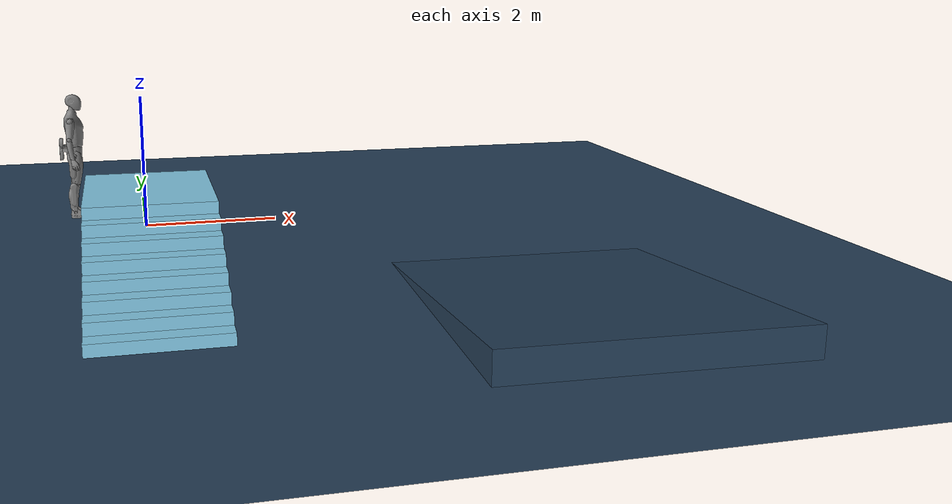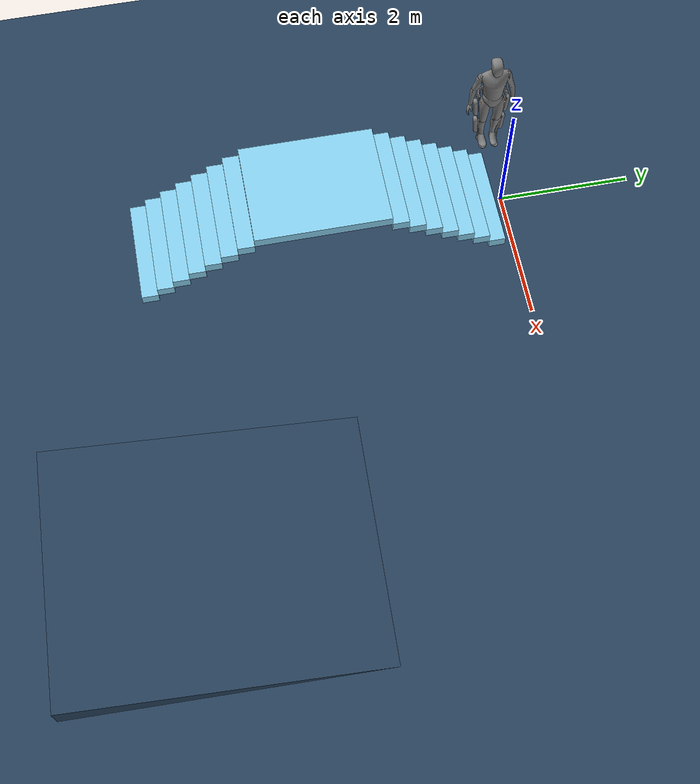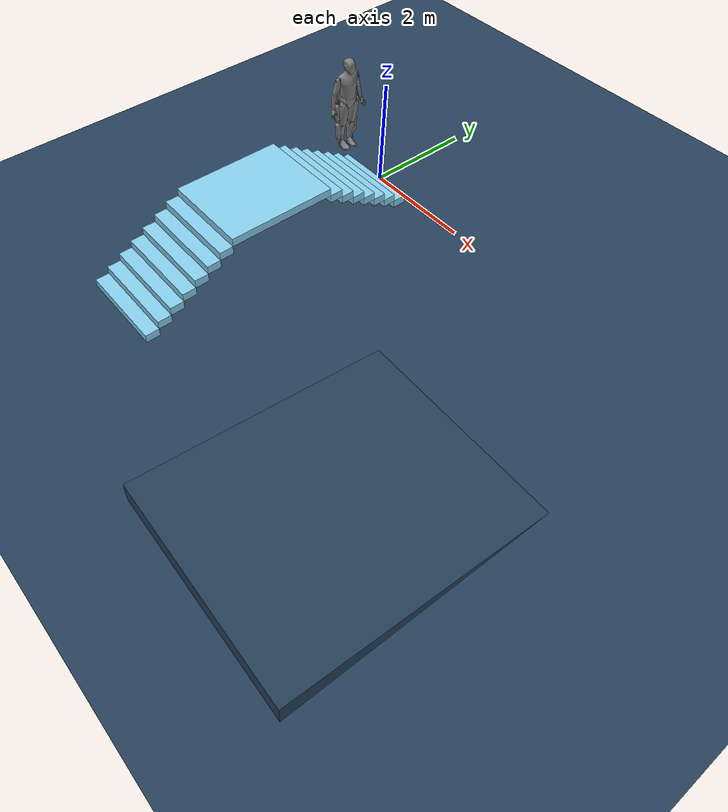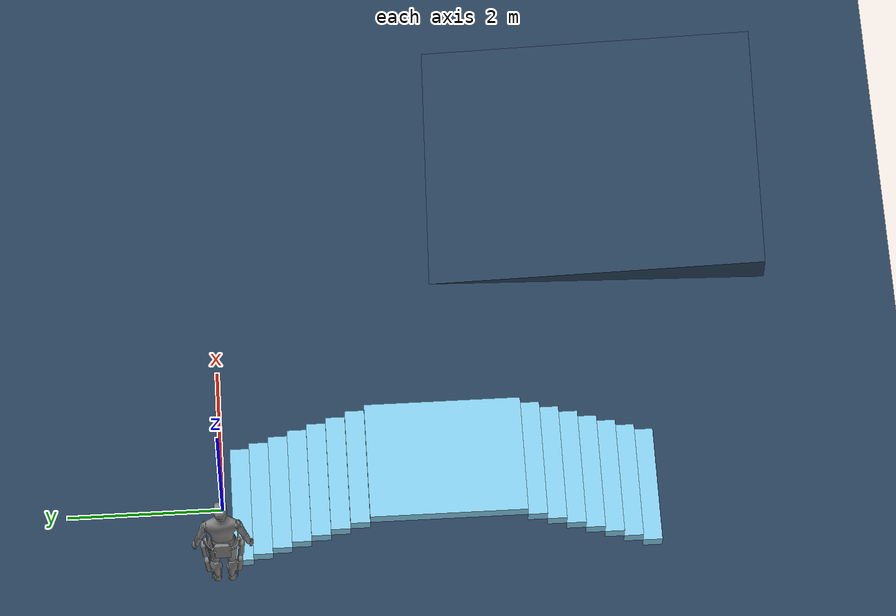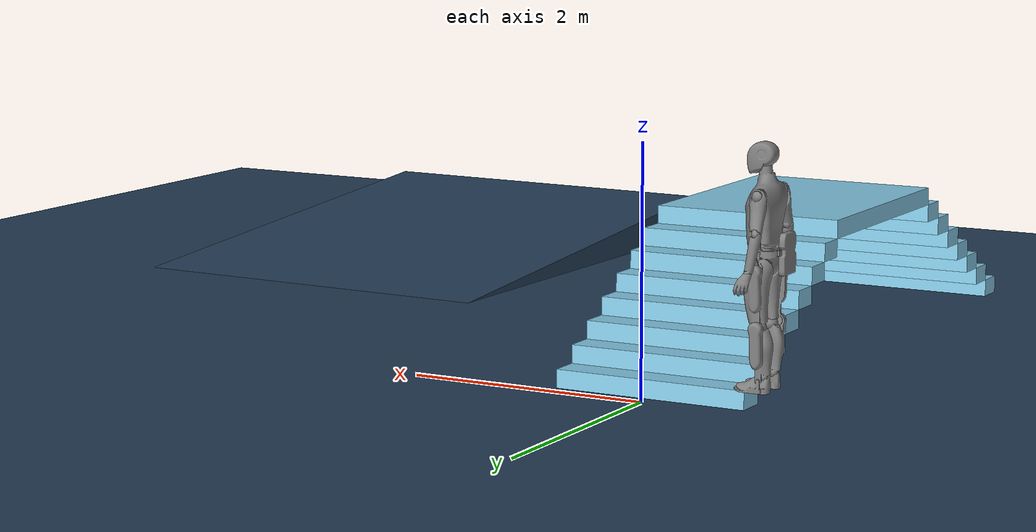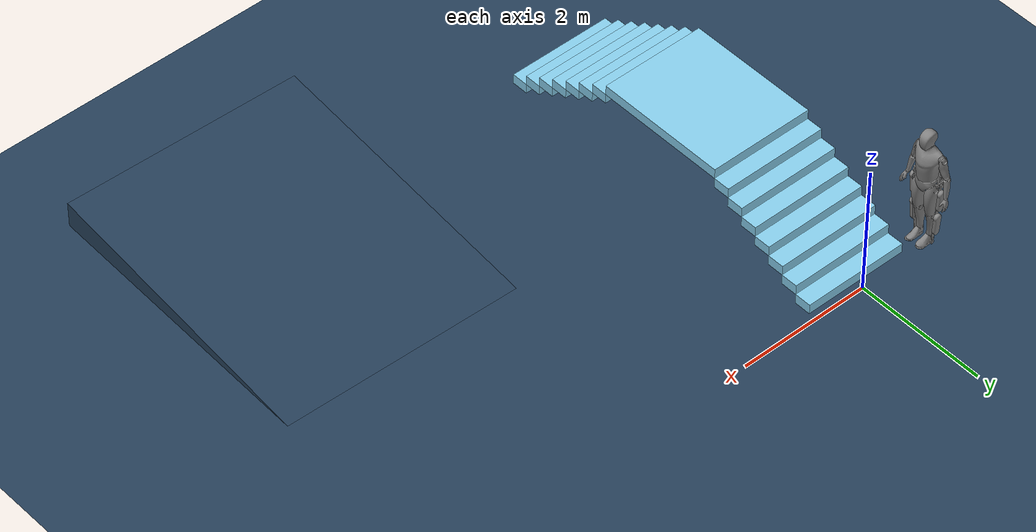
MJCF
<mujoco model="exoskeleton scene">
  <option gravity="0 0 -9.81" />
  <include file="exoskeleton.xml"/>
  <size nconmax="200" njmax="200" nstack="500000"/>
  <statistic center="0 0 1" extent="1.8"/>

  <visual>
    <headlight diffuse="0.6 0.6 0.6" ambient="0.3 0.3 0.3" specular="0 0 0"/>
    <rgba haze="0.15 0.25 0.35 1"/>
    <global azimuth="160" elevation="-20"/>
  </visual>

  <asset>
    <texture type="skybox" builtin="gradient" rgb1="0.3 0.5 0.7" rgb2="0 0 0" width="512" height="3072"/>
    <texture type="2d" name="groundplane" builtin="checker" mark="edge" rgb1="0.2 0.3 0.4" rgb2="0.1 0.2 0.3"
      markrgb="0.8 0.8 0.8" width="300" height="300"/>
    <material name="groundplane" texture="groundplane" texuniform="true" texrepeat="5 5" reflectance="0.2"/>
    <mesh name="slope" file="./meshes/slope.stl" scale="0.002 0.002 0.00124523"/>
  </asset>

  <worldbody>
    <light pos="0 0 3.5" dir="0 0 -1" directional="true"/>
    <!-- 添加 friction 属性来增加地板的摩擦力 -->
    <!-- 第一个地面 -->
    <geom name="floor1" pos="0 0 0" size="10 9 0.05" type="plane" material="groundplane" friction="0.1 0.1 0.1"/>

    <!-- 添加斜坡地形 -->
     <body name="slope_body" pos="5 -3 -0.15" euler="0 0 -1.6">
        <geom name="slope_geom" type="mesh" mesh="slope" material="groundplane" condim="3" friction="0.1 0.1 0.1"/>
    </body>

    <body name="staircase" pos="0 0 0" quat="0.7071 0 0 0">
      <!-- 定义楼梯的每一级台阶 -->
      <body name="step1" pos="0 -0.25 0.075">
          <geom name="step1_geom" type="box" size="0.8 0.125 0.075" rgba="0.529 0.808 0.922 1" contype="1" conaffinity="1"/>
      </body>
      <body name="step2" pos="0 -0.5 0.225">
          <geom name="step2_geom" type="box" size="0.8 0.125 0.075" rgba="0.529 0.808 0.922 1" contype="1" conaffinity="1"/>
      </body>
      <body name="step3" pos="0 -0.75 0.375">
          <geom name="step3_geom" type="box" size="0.8 0.125 0.075" rgba="0.529 0.808 0.922  1" contype="1" conaffinity="1"/>
      </body>
      <body name="step4" pos="0 -1 0.525">
          <geom name="step4_geom" type="box" size="0.8 0.125 0.075" rgba="0.529 0.808 0.922  1" contype="1" conaffinity="1"/>
      </body>
      <body name="step5" pos="0 -1.25 0.675">
          <geom name="step5_geom" type="box" size="0.8 0.125 0.075" rgba="0.529 0.808 0.922  1" contype="1" conaffinity="1"/>
      </body>
      <body name="step6" pos="0 -1.5 0.825">
          <geom name="step6_geom" type="box" size="0.8 0.125 0.075" rgba="0.529 0.808 0.922  1" contype="1" conaffinity="1"/>
      </body>
      <body name="step7" pos="0 -1.75 0.975">
          <geom name="step7_geom" type="box" size="0.8 0.125 0.075" rgba="0.529 0.808 0.922  1" contype="1" conaffinity="1"/>
      </body>
      <body name="step8" pos="0 -2.875 1.125">
          <geom name="step8_geom" type="box" size="0.8 1 0.075" rgba="0.529 0.808 0.922  1" contype="1" conaffinity="1"/>
      </body>
      <body name="step9" pos="0 -4 0.975">
          <geom name="step9_geom" type="box" size="0.8 0.125 0.075" rgba="0.529 0.808 0.922  1" contype="1" conaffinity="1"/>
      </body>
      <body name="step10" pos="0 -4.25 0.825">
          <geom name="step10_geom" type="box" size="0.8 0.125 0.075" rgba="0.529 0.808 0.922  1" contype="1" conaffinity="1"/>
      </body>
      <body name="step11" pos="0 -4.5 0.675">
          <geom name="step11_geom" type="box" size="0.8 0.125 0.075" rgba="0.529 0.808 0.922  1" contype="1" conaffinity="1"/>
      </body>
      <body name="step12" pos="0 -4.75 0.525">
          <geom name="step12_geom" type="box" size="0.8 0.125 0.075" rgba="0.529 0.808 0.922  1" contype="1" conaffinity="1"/>
      </body>
      <body name="step13" pos="0 -5 0.375">
          <geom name="step13_geom" type="box" size="0.8 0.125 0.075" rgba="0.529 0.808 0.922  1" contype="1" conaffinity="1"/>
      </body>
      <body name="step14" pos="0 -5.25 0.225">
          <geom name="step14_geom" type="box" size="0.8 0.125 0.075" rgba="0.529 0.808 0.922  1" contype="1" conaffinity="1"/>
      </body>
      <body name="step15" pos="0 -5.5 0.075">
          <geom name="step15_geom" type="box" size="0.8 0.125 0.075" rgba="0.529 0.808 0.922  1" contype="1" conaffinity="1"/>
      </body>

      左侧扶手 - 调整立杆位置和高度
      <body name="left_handrail" pos="0 0 0">
          <!-- 竖直立杆 - 调整位置和高度 -->

          <!-- 平台的扶手 -->

          <!-- 下行楼梯的扶手 -->

          <!-- 斜向连杆 - 连接各立杆顶部，调整角度 -->

          <!-- 平台扶手连接 -->

          <!-- 下行楼梯扶手连接 -->
      </body>

      <!-- 右侧扶手 - 调整立杆位置和高度 -->
      <body name="right_handrail" pos="0 0 0">
          <!-- 竖直立杆 - 调整位置和高度 -->

          <!-- 平台的扶手 -->

          <!-- 下行楼梯的扶手 -->

          <!-- 斜向连杆 - 连接各立杆顶部，调整角度 -->

          <!-- 平台扶手连接 -->

          <!-- 下行楼梯扶手连接 -->
      </body>
    </body>

  </worldbody>
</mujoco>

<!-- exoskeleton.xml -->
<mujoco model="exoskeleton">
  <compiler angle="radian"/>

  <asset>
    <mesh name="EL_ankle" file="./meshes/EL-ankle.stl" scale="0.001 0.001 0.001"/>
    <mesh name="EL_knee" file="./meshes/EL-knee.stl" scale="0.001 0.001 0.001"/>
    <mesh name="EB" file="./meshes/EB.stl" scale="0.001 0.001 0.001"/>
    <mesh name="EL_hip" file="./meshes/EL-hip.stl" scale="0.001 0.001 0.001"/>
    <mesh name="body" file="./meshes/body.stl" scale="0.001 0.001 0.001"/>
    <mesh name="head" file="./meshes/head.stl" scale="0.001 0.001 0.001"/>
    <mesh name="L_forearm" file="./meshes/L-forearm.stl" scale="0.001 0.001 0.001"/>
    <mesh name="L_arm" file="./meshes/L-arm.stl" scale="0.001 0.001 0.001"/>
    <mesh name="L_hand" file="./meshes/L-hand.stl" scale="0.001 0.001 0.001"/>
    <mesh name="R_arm" file="./meshes/R-arm.stl" scale="0.001 0.001 0.001"/>
    <mesh name="R_hand" file="./meshes/R-hand.stl" scale="0.001 0.001 0.001"/>
    <mesh name="ER_hip" file="./meshes/ER-hip.stl" scale="0.001 0.001 0.001"/>
    <mesh name="ER_knee" file="./meshes/ER-knee.stl" scale="0.001 0.001 0.001"/>
    <mesh name="ER_ankle" file="./meshes/ER-ankle.stl" scale="0.001 0.001 0.001"/>
    <mesh name="R_forearm" file="./meshes/R-forearm.stl" scale="0.001 0.001 0.001"/>
  </asset>

  <worldbody>
  <body name="EB" pos="-1 0 1.3" quat="0.7071 0 0 0.7071">
    <geom name="EB_collision" pos="1.38955e-10 0 -2" quat="1 0 -3.47384e-11 0" type="mesh" mesh="EB"/>
    <body name="EL_hip" pos="0.218902 0.039 -0.168795" quat="0 0.681998 0 -0.731354">
      <inertial pos="0.158888 0.0247193 0.0597323" quat="0.578287 0.401701 0.573377 0.418878" mass="15.9115" diaginertia="0.365197 0.319066 0.0978994"/>
      <joint name="EL_hip_joint" pos="0 0 0" axis="4.69037e-07 0 1" range="-1.5708 1.5708" actuatorfrcrange="-1000000 1000000"/>
      <geom name="EL_hip_collision" pos="1.99513 -1.26085e-12 -0.138013" quat="0 -0.681998 0 0.731354" type="mesh" mesh="EL_hip"/>
      <body name="EL_knee" pos="0.43 0 0.0025" quat="0 -1 0 0">
        <inertial pos="0.154693 0.0059421 -0.0169216" quat="0.401992 0.573192 0.511101 0.498628" mass="8.82676" diaginertia="0.119293 0.105824 0.0291683"/>
        <joint name="EL_knee_joint" pos="0 0 0" axis="-4.69037e-07 0 1" range="-0.174533 2.0944" actuatorfrcrange="-1000000 1000000"/>
        <geom name="EL_knee_collision" pos="1.99513 -2.28873e-12 0.136513" quat="0.681998 0 -0.731354 0" type="mesh" mesh="EL_knee"/>
        <body name="EL_ankle" pos="0.4 0 -0.0025">
          <inertial pos="0.063803 -0.0531817 -0.0573719" quat="0.665675 0.688908 0.241718 -0.15445" mass="1" diaginertia="0.0167909 0.0160893 0.00490528"/>
          <joint name="EL_ankle_joint" pos="0 0 0" axis="-4.69037e-07 0 1" range="-1.0472 1.5708" actuatorfrcrange="-1000000 1000000"/>
          <geom name="EL_ankle_collision" pos="1.99513 -2.29743e-12 0.136513" quat="0.681998 0 -0.731354 0" type="mesh" mesh="EL_ankle"/>
        </body>
      </body>
    </body>
    <body name="ER_hip" pos="-0.218902 0.039 -0.168795" quat="0.681998 0 -0.731354 0">
      <inertial pos="-0.158888 -0.0247193 -0.0597323" quat="0.578287 0.401701 0.573377 0.418878" mass="15.9115" diaginertia="0.365197 0.319066 0.0978994"/>
      <joint name="ER_hip_joint" pos="0 0 0" axis="4.69037e-07 0 1" range="-1.5708 1.5708" actuatorfrcrange="-1000000 1000000"/>
      <geom name="ER_hip_collision" pos="-1.99513 -7.06823e-12 0.138013" quat="0.681998 0 0.731354 0" type="mesh" mesh="ER_hip"/>
      <body name="ER_knee" pos="-0.43 0 -0.0025" quat="0 1 0 0">
        <inertial pos="-0.154693 -0.0059421 0.0169216" quat="0.401992 0.573192 0.511101 0.498628" mass="8.82676" diaginertia="0.119293 0.105824 0.0291683"/>
        <joint name="ER_knee_joint" pos="0 0 0" axis="-4.69037e-07 0 1" range="-0.174533 2.0944" actuatorfrcrange="-1000000 1000000"/>
        <geom name="ER_knee_collision" pos="-1.99513 -2.00611e-12 -0.136513" quat="0 -0.681998 0 -0.731354" type="mesh" mesh="ER_knee"/>
        <body name="ER_ankle" pos="-0.4 0 0.0025">
          <inertial pos="-0.0638029 0.0531818 0.057372" quat="0.665675 0.688908 0.241718 -0.154449" mass="1" diaginertia="0.016791 0.0160893 0.00490521"/>
          <joint name="ER_ankle_joint" pos="0 0 0" axis="-4.69037e-07 0 1" range="-1.0472 1.5708" actuatorfrcrange="-1000000 1000000"/>
          <geom name="ER_ankle_collision" pos="-1.99513 0 -0.136513" quat="0 -0.681998 0 -0.731354" type="mesh" mesh="ER_ankle"/>
        </body>
      </body>
    </body>
    <body name="body">
      <inertial pos="7.27857e-07 0.0113203 0.247415" quat="0.706569 -0.0275781 0.027586 0.706568" mass="35.2638" diaginertia="1.06739 0.949503 0.371946"/>
      <joint name="torso_joint" pos="0 0 0" axis="0 0 1" range="-1.5708 1.5708" actuatorfrcrange="-1000000 1000000"/>
      <geom name="body_collision" pos="9.60869e-11 0 -1.383" quat="1 0 -3.47386e-11 0" type="mesh" mesh="body"/>
      <body name="R_arm" pos="-0.2 0.0464213 0.385692" quat="0 0.707107 0 0.707107">
        <inertial pos="-0.12833 -0.00625431 -0.0426701" quat="-0.0526397 0.634312 -0.0023652 0.77128" mass="2.2828" diaginertia="0.0185807 0.0176686 0.00286415"/>
        <joint name="RS_joint" pos="0 0 0" axis="0 0 1" range="-3.14159 1.5708" actuatorfrcrange="-1000000 1000000"/>
        <geom name="R_arm_collision" pos="-4.00006 3.37563e-09 0.00473992" quat="0 0.707107 0 0.707107" type="mesh" mesh="R_arm"/>
        <body name="R_forearm" pos="-0.264847 -0.0198197 -0.0796568" quat="0 0.707107 0 0.707107">
          <inertial pos="-0.0268667 -0.0153833 -0.131647" quat="0.976435 -0.0653018 0.0863539 0.186689" mass="1.24814" diaginertia="0.0074798 0.0074271 0.000957918"/>
          <joint name="R_elbow_joint" pos="0 0 0" axis="1 0 0" range="-2.0944 0.174533" actuatorfrcrange="-1000000 1000000"/>
          <geom name="R_forearm_collision" pos="2.11764e-09 4.69913e-09 -4" quat="1 0 -3.47386e-11 0" type="mesh" mesh="R_forearm"/>
          <body name="R_hand" pos="-0.0444275 -0.0400143 -0.281903">
            <inertial pos="-0.0276707 -0.0282138 -0.0630869" quat="0.963141 -0.187289 0.178891 0.072668" mass="0.39981" diaginertia="0.00105872 0.000917332 0.000307705"/>
            <joint name="R_hand_joint" pos="0 0 0" axis="0 0 -1" range="-3.14159 3.14159" actuatorfrcrange="-1000000 1000000"/>
            <geom name="R_hand_collision" pos="0.021435 -0.00142723 -4.00006" quat="1 0 -3.47386e-11 0" type="mesh" mesh="R_hand"/>
          </body>
        </body>
      </body>
      <body name="L_arm" pos="0.2 0.0464213 0.385692" quat="0 -0.707107 0 -0.707107">
        <inertial pos="-0.12833 -0.00625431 0.0426701" quat="0.0023652 0.77128 0.0526397 0.634312" mass="2.2828" diaginertia="0.0185807 0.0176686 0.00286415"/>
        <joint name="LS_joint" pos="0 0 0" axis="0 0 1" range="-3.14159 1.5708" actuatorfrcrange="-1000000 1000000"/>
        <geom name="L_arm_collision" pos="-4.00006 3.37555e-09 -0.00473992" quat="0 0.707107 0 0.707107" type="mesh" mesh="L_arm"/>
        <body name="L_forearm" pos="-0.264847 -0.0198197 0.0796568" quat="0 0.707107 0 0.707107">
          <inertial pos="0.0268667 -0.0153833 -0.131647" quat="0.976435 -0.0653018 -0.0863539 -0.186689" mass="1.24814" diaginertia="0.0074798 0.0074271 0.000957918"/>
          <joint name="L_elbow_joint" pos="0 0 0" axis="1 0 0" range="-2.0944 0.174533" actuatorfrcrange="-1000000 1000000"/>
          <geom name="L_forearm_collision" pos="0.0018782 -0.0292571 -4.01964" quat="1 0 -3.47386e-11 0" type="mesh" mesh="L_forearm"/>
          <body name="L_hand" pos="0.0444275 -0.0400143 -0.281903" quat="0 1 0 0">
            <inertial pos="0.0276707 0.0282138 0.0630869" quat="0.963141 -0.187289 0.178891 0.072668" mass="0.39981" diaginertia="0.00105872 0.000917332 0.000307705"/>
            <joint name="L_hand_joint" pos="0 0 0" axis="0 0 1" range="-3.14159 3.14159" actuatorfrcrange="-1000000 1000000"/>
            <geom name="L_hand_collision" pos="-4.88107e-05 3.07731e-09 4.00006" quat="0 1 0 -3.47386e-11" type="mesh" mesh="L_hand"/>
          </body>
        </body>
      </body>
      <body name="head" pos="0.00012209 -6e-07 0.616999">
        <inertial pos="-0.000140513 -0.0215 0.0454446" quat="0.425264 0.905043 0.00574385 -0.00373813" mass="4.92456" diaginertia="0.0316976 0.0301778 0.0191567"/>
        <joint name="Head_joint" pos="0 0 0" axis="0 0 1" range="-1.5708 1.5708" actuatorfrcrange="-1000000 1000000"/>
        <geom name="head_collision" pos="-0.00012209 3.23451e-09 -4" quat="1 0 -3.47385e-11 0" type="mesh" mesh="head"/>
      </body>
    </body>

  </body>
  </worldbody>
  <contact>
    <!-- 禁用盆骨和大腿之间的碰撞 -->
    <exclude body1="EB" body2="EL_hip" />
    <exclude body1="EB" body2="ER_hip" />
    <!-- 禁用身体和盆骨之间的碰撞 -->
    <exclude body1="EB" body2="body"/>

    <!-- 禁用大腿和小腿之间的碰撞 -->
    <exclude body1="EL_hip" body2="EL_knee" />
    <exclude body1="ER_hip" body2="ER_knee" />

    <!-- 禁用小腿和脚之间的碰撞 -->
    <exclude body1="EL_knee" body2="EL_ankle" />
    <exclude body1="ER_knee" body2="ER_ankle" />

    <!-- 禁用身体和大臂之间的碰撞 -->
    <exclude body1="body" body2="L_arm" />
    <exclude body1="body" body2="R_arm" />

    <!-- 禁用身体和头之间的碰撞 -->
    <exclude body1="body" body2="head"/>

    <!-- 禁用大臂和小臂之间的碰撞 -->
    <exclude body1="L_arm" body2="L_forearm" />
    <exclude body1="R_arm" body2="R_forearm" />

    <!-- 禁用小臂和手之间的碰撞 -->
    <exclude body1="L_forearm" body2="L_hand"/>
    <exclude body1="R_forearm" body2="R_hand"/>
  </contact>
    <actuator>
        <!-- position controllers -->
        <position name='pos_EL_hip_joint' joint="EL_hip_joint" kp='5000' forcelimited="true" forcerange="-250 250"/>
        <position name='pos_EL_knee_joint' joint="EL_knee_joint" kp='2000' forcelimited="true" forcerange="-250 250"/>
        <position name='pos_EL_ankle_joint' joint="EL_ankle_joint" kp='2000' forcelimited="true" forcerange="-250 250"/>
        <position name='pos_ER_hip_joint' joint="ER_hip_joint" kp='5000' forcelimited="true" forcerange="-250 250"/>
        <position name='pos_ER_knee_joint' joint="ER_knee_joint" kp='2000' forcelimited="true" forcerange="-250 250"/>
        <position name='pos_ER_ankle_joint' joint="ER_ankle_joint" kp='2000' forcelimited="true" forcerange="-250 250"/>
        <!-- The position controllers of upper body joint -->
        <position name='pos_torso_joint' joint="torso_joint" kp='2000' forcelimited="true" forcerange="-200 200"/> \
        <position name='pos_RS_joint' joint="RS_joint" kp='2000' forcelimited="true" forcerange="-200 200"/>
        <position name='pos_R_elbow_joint' joint="R_elbow_joint" kp='2000' forcelimited="true" forcerange="-200 200"/>
        <position name='pos_R_hand_joint' joint="R_hand_joint" kp='500' forcelimited="true" forcerange="-200 200"/>
        <position name='pos_LS_joint' joint="LS_joint" kp='2000' forcelimited="true" forcerange="-200 200"/>
        <position name='pos_L_elbow_joint' joint="L_elbow_joint" kp='2000' forcelimited="true" forcerange="-200 200"/>
        <position name='pos_L_hand_joint' joint="L_hand_joint" kp='500' forcelimited="true" forcerange="-200 200"/>
        <position name='pos_Head_joint' joint="Head_joint" kp='2000' forcelimited="true" forcerange="-200 200"/>
        <!--velocity controllers-->
        <velocity name='vel_EL_hip_joint' joint="EL_hip_joint" kv='100' forcelimited="true" forcerange="-250 250"/>
        <velocity name='vel_EL_knee_joint' joint="EL_knee_joint" kv='50'  forcelimited="true" forcerange="-250 250"/>
        <velocity name='vel_EL_ankle_joint' joint="EL_ankle_joint" kv='2'  forcelimited="true" forcerange="-250 250"/>
        <velocity name='vel_ER_hip_joint' joint="ER_hip_joint" kv='100' forcelimited="true" forcerange="-250 250"/>
        <velocity name='vel_ER_knee_joint' joint="ER_knee_joint" kv='50'  forcelimited="true" forcerange="-250 250"/>
        <velocity name='vel_ER_ankle_joint' joint="ER_ankle_joint" kv='2'  forcelimited="true" forcerange="-250 250"/>
        <velocity name='vel_Head_joint' joint="Head_joint" kv='2'  forcelimited="true" forcerange="-250 250"/>
        <!-- The velocity controllers of upper body joint -->
        <velocity name='vel_torso_joint' joint="torso_joint" kv='2' forcelimited="true" forcerange="-200 200"/> \
        <velocity name='vel_RS_joint' joint="RS_joint" kv='2' forcelimited="true" forcerange="-200 200"/>
        <velocity name='vel_R_elbow_joint' joint="R_elbow_joint" kv='2' forcelimited="true" forcerange="-200 200"/>
        <velocity name='vel_LS_joint' joint="LS_joint" kv='2' forcelimited="true" forcerange="-200 200"/>
        <velocity name='vel_L_elbow_joint' joint="L_elbow_joint" kv='2' forcelimited="true" forcerange="-200 200"/>

        <!--torque controllers-->
        <motor name='trq_EL_hip_joint' joint="EL_hip_joint" gear='1' forcelimited="true" forcerange="-500 500"/>
        <motor name='trq_EL_knee_joint' joint="EL_knee_joint" gear='1' forcelimited="true" forcerange="-500 500"/>
        <motor name='trq_EL_ankle_joint' joint="EL_ankle_joint" gear='1' forcelimited="true" forcerange="-500 500"/>
        <motor name='trq_ER_hip_joint' joint="ER_hip_joint" gear='1' forcelimited="true" forcerange="-500 500"/>
        <motor name='trq_ER_knee_joint' joint="ER_knee_joint" gear='1' forcelimited="true" forcerange="-500 500"/>
        <motor name='trq_ER_ankle_joint' joint="ER_ankle_joint" gear='1' forcelimited="true" forcerange="-500 500"/>
        <!-- The torque controllers of Upper body joint -->
    </actuator>

    <sensor>
        <!--joint position sensors-->

        <jointpos  name="pos_EL_hip_joint" joint="EL_hip_joint"/>
        <jointpos  name="pos_EL_knee_joint" joint="EL_knee_joint"/>
        <jointpos  name="pos_EL_ankle_joint" joint="EL_ankle_joint"/>
        <jointpos  name="pos_ER_hip_joint" joint="ER_hip_joint"/>
        <jointpos  name="pos_ER_knee_joint" joint="ER_knee_joint"/>
        <jointpos  name="pos_ER_ankle_joint" joint="ER_ankle_joint"/>
        <!--joint velocity sensors-->

        <jointvel  name="vel_EL_hip_joint" joint="EL_hip_joint"/>
        <jointvel  name="vel_EL_knee_joint" joint="EL_knee_joint"/>
        <jointvel  name="vel_EL_ankle_joint" joint="EL_ankle_joint"/>
        <jointvel  name="vel_ER_hip_joint" joint="ER_hip_joint"/>
        <jointvel  name="vel_ER_knee_joint" joint="ER_knee_joint"/>
        <jointvel  name="vel_ER_ankle_joint" joint="ER_ankle_joint"/>

        <!--actuator torque sensors, note that these sensors are not for joints -->

        <!--actuator torque sensors, note that these sensors are not for joints -->

        <jointactuatorfrc  name="frc_EL_hip_joint" joint="EL_hip_joint"/>
        <jointactuatorfrc  name="frc_EL_knee_joint" joint="EL_knee_joint"/>
        <jointactuatorfrc  name="frc_EL_ankle_joint" joint="EL_ankle_joint"/>
        <jointactuatorfrc  name="frc_ER_hip_joint" joint="ER_hip_joint"/>
        <jointactuatorfrc  name="frc_ER_knee_joint" joint="ER_knee_joint"/>
        <jointactuatorfrc  name="frc_ER_ankle_joint" joint="ER_ankle_joint"/>

    </sensor>

</mujoco>
